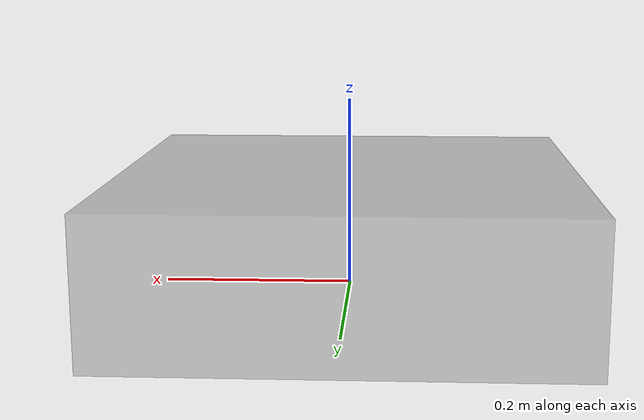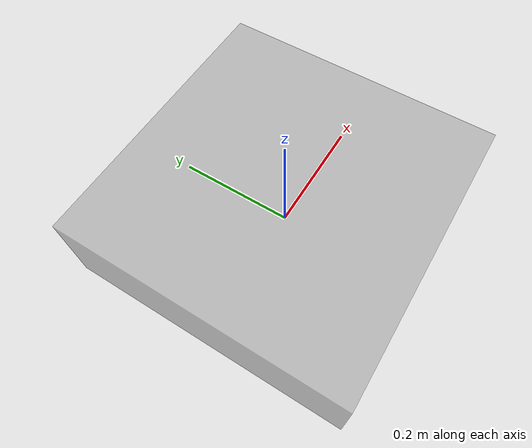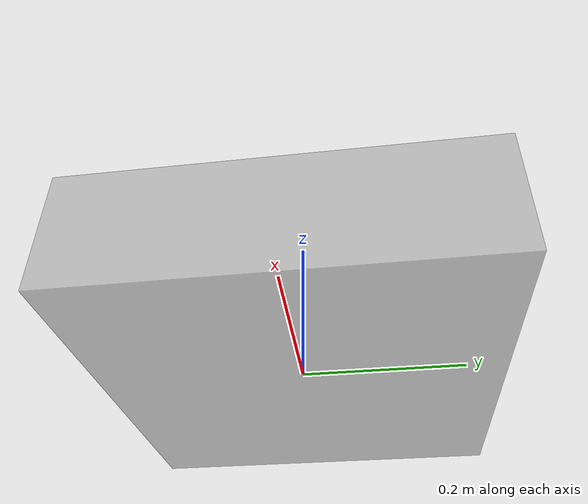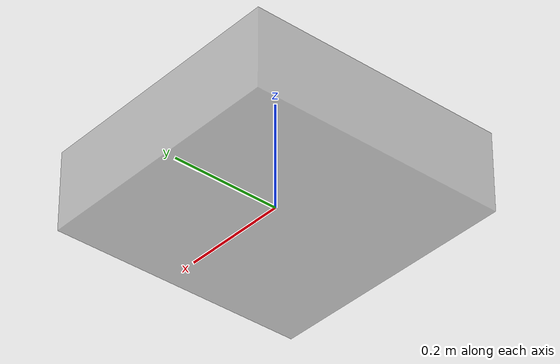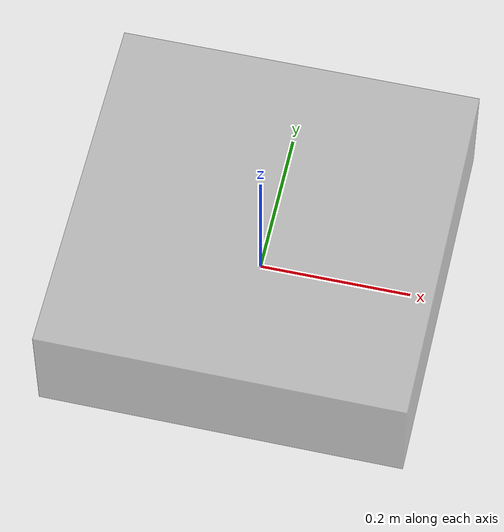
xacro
<?xml version="1.0"?>
<robot xmlns:xacro="http://www.ros.org/wiki/xacro" name="rm_old_car_2026">

  <xacro:property name="old_car_l1_x" value="0.1935"/>
  <xacro:property name="old_car_l1_y" value="0.1753"/>
  <xacro:property name="old_car_l1_z" value="0.2102"/>
  <xacro:property name="old_car_l1_roll" value="0.332345"/>
  <xacro:property name="old_car_l1_pitch" value="0.287549"/>
  <xacro:property name="old_car_l1_yaw" value="1.668370"/>
  <xacro:property name="old_car_l1_imu_x" value="0.157178"/>
  <xacro:property name="old_car_l1_imu_y" value="0.172624"/>
  <xacro:property name="old_car_l1_imu_z" value="0.174374"/>
  <!-- Provisional L2 values from the documented 180-degree XOY symmetry.
       They require physical measurement before dual-lidar acceptance. -->
  <xacro:property name="old_car_l2_x" value="-0.1935"/>
  <xacro:property name="old_car_l2_y" value="-0.1753"/>
  <xacro:property name="old_car_l2_z" value="0.2102"/>
  <xacro:property name="old_car_l2_roll" value="0.332345"/>
  <xacro:property name="old_car_l2_pitch" value="0.287549"/>
  <xacro:property name="old_car_l2_yaw" value="-1.473223"/>

  <link name="base_link">
    <visual>
      <origin xyz="0 0 0.05" rpy="0 0 0"/>
      <geometry>
        <box size="0.48 0.48 0.15"/>
      </geometry>
      <material name="old_car_gray">
        <color rgba="0.5 0.5 0.5 0.45"/>
      </material>
    </visual>
  </link>

  <!-- The old car has no navigation gimbal. Keep a fixed zero-yaw
       compatibility frame so description-only validation can publish the full
       TF chain without requiring a /joint_states source. -->
  <link name="gimbal_yaw_link"/>

  <joint name="gimbal_yaw_joint" type="fixed">
    <parent link="base_link"/>
    <child link="gimbal_yaw_link"/>
    <origin xyz="0 0 0" rpy="0 0 0"/>
  </joint>

  <link name="lio_imu_link"/>

  <joint name="gimbal_yaw_link_to_lio_imu_link" type="fixed">
    <parent link="gimbal_yaw_link"/>
    <child link="lio_imu_link"/>
    <!-- Selected MID360 internal IMU frame used by FAST-LIO body state. -->
    <origin
      xyz="${old_car_l1_imu_x} ${old_car_l1_imu_y} ${old_car_l1_imu_z}"
      rpy="${old_car_l1_roll} ${old_car_l1_pitch} ${old_car_l1_yaw}"/>
  </joint>

  <link name="old_car_laser_link"/>

  <joint name="gimbal_yaw_link_to_old_car_laser_link" type="fixed">
    <parent link="gimbal_yaw_link"/>
    <child link="old_car_laser_link"/>
    <origin
      xyz="${old_car_l1_x} ${old_car_l1_y} ${old_car_l1_z}"
      rpy="${old_car_l1_roll} ${old_car_l1_pitch} ${old_car_l1_yaw}"/>
  </joint>

  <link name="mid360_left_frame"/>

  <joint name="gimbal_yaw_link_to_mid360_left_frame" type="fixed">
    <parent link="gimbal_yaw_link"/>
    <child link="mid360_left_frame"/>
    <!-- Matches the current left driver frame_id and measured L1 extrinsic. -->
    <origin
      xyz="${old_car_l1_x} ${old_car_l1_y} ${old_car_l1_z}"
      rpy="${old_car_l1_roll} ${old_car_l1_pitch} ${old_car_l1_yaw}"/>
  </joint>

  <link name="mid360_right_frame"/>

  <joint name="gimbal_yaw_link_to_mid360_right_frame" type="fixed">
    <parent link="gimbal_yaw_link"/>
    <child link="mid360_right_frame"/>
    <origin
      xyz="${old_car_l2_x} ${old_car_l2_y} ${old_car_l2_z}"
      rpy="${old_car_l2_roll} ${old_car_l2_pitch} ${old_car_l2_yaw}"/>
  </joint>

  <link name="base_imu_link"/>

  <joint name="base_link_to_base_imu_link" type="fixed">
    <parent link="base_link"/>
    <child link="base_imu_link"/>
    <origin xyz="0 0 0.05" rpy="0 0 0"/>
  </joint>
</robot>
